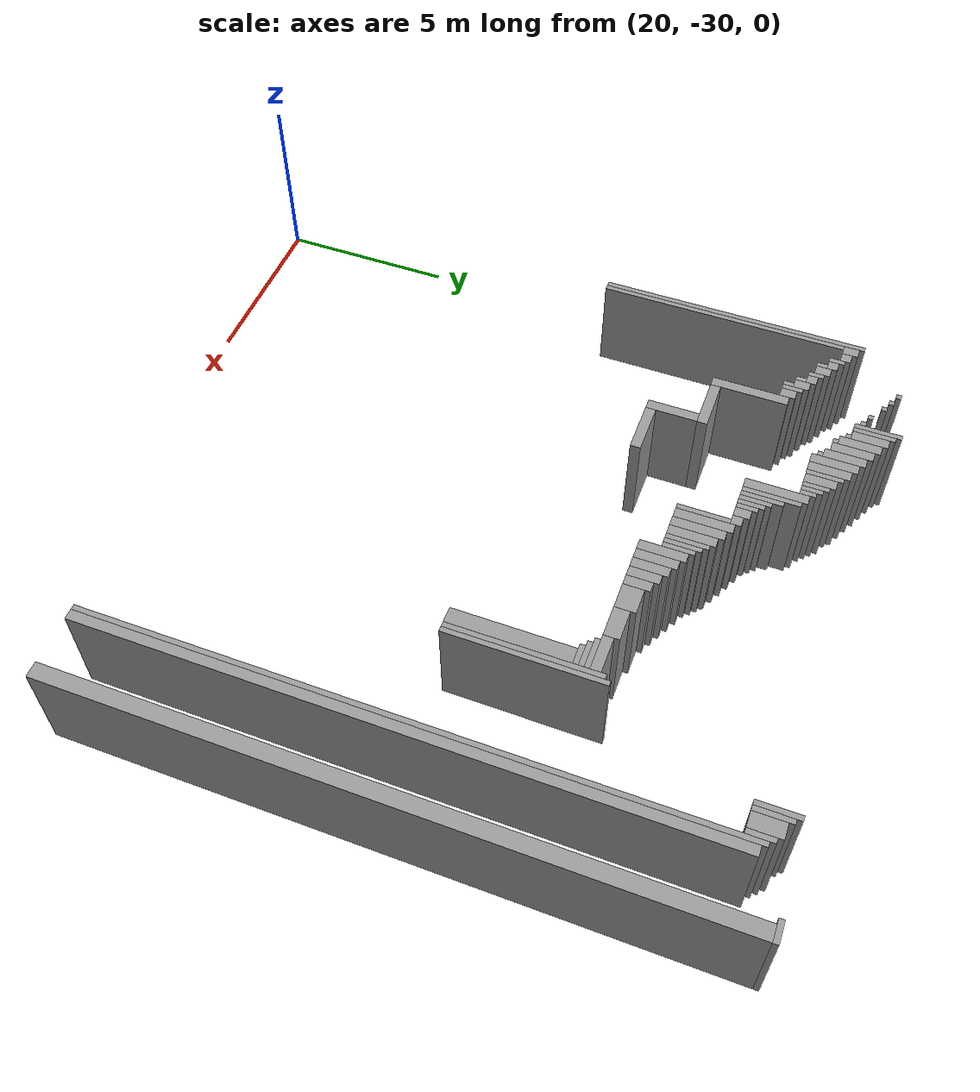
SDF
<sdf version="1.4">
 <model name="FunWorld1">
  <static>1</static>
  <link name="Wall_156">
   <collision name="Wall_156_Collision">
    <geometry><box><size>0.60000 0.15000 3.00000</size></box></geometry>
    <pose>37.80000 -9.67500 0 0 0 0.00000</pose>
   </collision>
   <visual name="Wall_156_Visual">
    <geometry><box><size>0.60000 0.15000 3.00000</size></box></geometry>
    <material>
     <script><uri>file://media/materials/scripts/gazebo.material</uri><name>Gazebo/Grey</name></script>
    </material>
    <pose>37.80000 -9.67500 0 0 0 0.00000</pose>
   </visual>
  </link>
  <link name="Wall_157">
   <collision name="Wall_157_Collision">
    <geometry><box><size>0.15000 1.35000 3.00000</size></box></geometry>
    <pose>22.87500 -10.42500 0 0 0 0.00000</pose>
   </collision>
   <visual name="Wall_157_Visual">
    <geometry><box><size>0.15000 1.35000 3.00000</size></box></geometry>
    <material>
     <script><uri>file://media/materials/scripts/gazebo.material</uri><name>Gazebo/Grey</name></script>
    </material>
    <pose>22.87500 -10.42500 0 0 0 0.00000</pose>
   </visual>
  </link>
  <link name="Wall_158">
   <collision name="Wall_158_Collision">
    <geometry><box><size>0.15000 1.20000 3.00000</size></box></geometry>
    <pose>35.02500 -10.35000 0 0 0 0.00000</pose>
   </collision>
   <visual name="Wall_158_Visual">
    <geometry><box><size>0.15000 1.20000 3.00000</size></box></geometry>
    <material>
     <script><uri>file://media/materials/scripts/gazebo.material</uri><name>Gazebo/Grey</name></script>
    </material>
    <pose>35.02500 -10.35000 0 0 0 0.00000</pose>
   </visual>
  </link>
  <link name="Wall_159">
   <collision name="Wall_159_Collision">
    <geometry><box><size>0.45000 18.75000 3.00000</size></box></geometry>
    <pose>37.87500 -19.12500 0 0 0 0.00000</pose>
   </collision>
   <visual name="Wall_159_Visual">
    <geometry><box><size>0.45000 18.75000 3.00000</size></box></geometry>
    <material>
     <script><uri>file://media/materials/scripts/gazebo.material</uri><name>Gazebo/Grey</name></script>
    </material>
    <pose>37.87500 -19.12500 0 0 0 0.00000</pose>
   </visual>
  </link>
  <link name="Wall_160">
   <collision name="Wall_160_Collision">
    <geometry><box><size>0.15000 1.20000 3.00000</size></box></geometry>
    <pose>23.02500 -10.50000 0 0 0 0.00000</pose>
   </collision>
   <visual name="Wall_160_Visual">
    <geometry><box><size>0.15000 1.20000 3.00000</size></box></geometry>
    <material>
     <script><uri>file://media/materials/scripts/gazebo.material</uri><name>Gazebo/Grey</name></script>
    </material>
    <pose>23.02500 -10.50000 0 0 0 0.00000</pose>
   </visual>
  </link>
  <link name="Wall_161">
   <collision name="Wall_161_Collision">
    <geometry><box><size>0.15000 1.05000 3.00000</size></box></geometry>
    <pose>35.17500 -10.42500 0 0 0 0.00000</pose>
   </collision>
   <visual name="Wall_161_Visual">
    <geometry><box><size>0.15000 1.05000 3.00000</size></box></geometry>
    <material>
     <script><uri>file://media/materials/scripts/gazebo.material</uri><name>Gazebo/Grey</name></script>
    </material>
    <pose>35.17500 -10.42500 0 0 0 0.00000</pose>
   </visual>
  </link>
  <link name="Wall_162">
   <collision name="Wall_162_Collision">
    <geometry><box><size>0.15000 0.15000 3.00000</size></box></geometry>
    <pose>21.37500 -10.12500 0 0 0 0.00000</pose>
   </collision>
   <visual name="Wall_162_Visual">
    <geometry><box><size>0.15000 0.15000 3.00000</size></box></geometry>
    <material>
     <script><uri>file://media/materials/scripts/gazebo.material</uri><name>Gazebo/Grey</name></script>
    </material>
    <pose>21.37500 -10.12500 0 0 0 0.00000</pose>
   </visual>
  </link>
  <link name="Wall_163">
   <collision name="Wall_163_Collision">
    <geometry><box><size>0.30000 1.05000 3.00000</size></box></geometry>
    <pose>23.25000 -10.57500 0 0 0 0.00000</pose>
   </collision>
   <visual name="Wall_163_Visual">
    <geometry><box><size>0.30000 1.05000 3.00000</size></box></geometry>
    <material>
     <script><uri>file://media/materials/scripts/gazebo.material</uri><name>Gazebo/Grey</name></script>
    </material>
    <pose>23.25000 -10.57500 0 0 0 0.00000</pose>
   </visual>
  </link>
  <link name="Wall_164">
   <collision name="Wall_164_Collision">
    <geometry><box><size>0.45000 0.90000 3.00000</size></box></geometry>
    <pose>35.47500 -10.50000 0 0 0 0.00000</pose>
   </collision>
   <visual name="Wall_164_Visual">
    <geometry><box><size>0.45000 0.90000 3.00000</size></box></geometry>
    <material>
     <script><uri>file://media/materials/scripts/gazebo.material</uri><name>Gazebo/Grey</name></script>
    </material>
    <pose>35.47500 -10.50000 0 0 0 0.00000</pose>
   </visual>
  </link>
  <link name="Wall_165">
   <collision name="Wall_165_Collision">
    <geometry><box><size>0.15000 0.15000 3.00000</size></box></geometry>
    <pose>21.67500 -10.27500 0 0 0 0.00000</pose>
   </collision>
   <visual name="Wall_165_Visual">
    <geometry><box><size>0.15000 0.15000 3.00000</size></box></geometry>
    <material>
     <script><uri>file://media/materials/scripts/gazebo.material</uri><name>Gazebo/Grey</name></script>
    </material>
    <pose>21.67500 -10.27500 0 0 0 0.00000</pose>
   </visual>
  </link>
  <link name="Wall_166">
   <collision name="Wall_166_Collision">
    <geometry><box><size>0.30000 1.20000 3.00000</size></box></geometry>
    <pose>23.55000 -10.80000 0 0 0 0.00000</pose>
   </collision>
   <visual name="Wall_166_Visual">
    <geometry><box><size>0.30000 1.20000 3.00000</size></box></geometry>
    <material>
     <script><uri>file://media/materials/scripts/gazebo.material</uri><name>Gazebo/Grey</name></script>
    </material>
    <pose>23.55000 -10.80000 0 0 0 0.00000</pose>
   </visual>
  </link>
  <link name="Wall_167">
   <collision name="Wall_167_Collision">
    <geometry><box><size>0.15000 0.75000 3.00000</size></box></geometry>
    <pose>35.77500 -10.57500 0 0 0 0.00000</pose>
   </collision>
   <visual name="Wall_167_Visual">
    <geometry><box><size>0.15000 0.75000 3.00000</size></box></geometry>
    <material>
     <script><uri>file://media/materials/scripts/gazebo.material</uri><name>Gazebo/Grey</name></script>
    </material>
    <pose>35.77500 -10.57500 0 0 0 0.00000</pose>
   </visual>
  </link>
  <link name="Wall_168">
   <collision name="Wall_168_Collision">
    <geometry><box><size>0.15000 0.15000 3.00000</size></box></geometry>
    <pose>21.97500 -10.42500 0 0 0 0.00000</pose>
   </collision>
   <visual name="Wall_168_Visual">
    <geometry><box><size>0.15000 0.15000 3.00000</size></box></geometry>
    <material>
     <script><uri>file://media/materials/scripts/gazebo.material</uri><name>Gazebo/Grey</name></script>
    </material>
    <pose>21.97500 -10.42500 0 0 0 0.00000</pose>
   </visual>
  </link>
  <link name="Wall_169">
   <collision name="Wall_169_Collision">
    <geometry><box><size>0.30000 1.20000 3.00000</size></box></geometry>
    <pose>23.85000 -10.95000 0 0 0 0.00000</pose>
   </collision>
   <visual name="Wall_169_Visual">
    <geometry><box><size>0.30000 1.20000 3.00000</size></box></geometry>
    <material>
     <script><uri>file://media/materials/scripts/gazebo.material</uri><name>Gazebo/Grey</name></script>
    </material>
    <pose>23.85000 -10.95000 0 0 0 0.00000</pose>
   </visual>
  </link>
  <link name="Wall_170">
   <collision name="Wall_170_Collision">
    <geometry><box><size>0.15000 18.15000 3.00000</size></box></geometry>
    <pose>35.92500 -19.42500 0 0 0 0.00000</pose>
   </collision>
   <visual name="Wall_170_Visual">
    <geometry><box><size>0.15000 18.15000 3.00000</size></box></geometry>
    <material>
     <script><uri>file://media/materials/scripts/gazebo.material</uri><name>Gazebo/Grey</name></script>
    </material>
    <pose>35.92500 -19.42500 0 0 0 0.00000</pose>
   </visual>
  </link>
  <link name="Wall_171">
   <collision name="Wall_171_Collision">
    <geometry><box><size>0.30000 1.20000 3.00000</size></box></geometry>
    <pose>24.15000 -11.10000 0 0 0 0.00000</pose>
   </collision>
   <visual name="Wall_171_Visual">
    <geometry><box><size>0.30000 1.20000 3.00000</size></box></geometry>
    <material>
     <script><uri>file://media/materials/scripts/gazebo.material</uri><name>Gazebo/Grey</name></script>
    </material>
    <pose>24.15000 -11.10000 0 0 0 0.00000</pose>
   </visual>
  </link>
  <link name="Wall_172">
   <collision name="Wall_172_Collision">
    <geometry><box><size>0.30000 18.00000 3.00000</size></box></geometry>
    <pose>36.15000 -19.50000 0 0 0 0.00000</pose>
   </collision>
   <visual name="Wall_172_Visual">
    <geometry><box><size>0.30000 18.00000 3.00000</size></box></geometry>
    <material>
     <script><uri>file://media/materials/scripts/gazebo.material</uri><name>Gazebo/Grey</name></script>
    </material>
    <pose>36.15000 -19.50000 0 0 0 0.00000</pose>
   </visual>
  </link>
  <link name="Wall_173">
   <collision name="Wall_173_Collision">
    <geometry><box><size>0.15000 0.15000 3.00000</size></box></geometry>
    <pose>22.42500 -10.72500 0 0 0 0.00000</pose>
   </collision>
   <visual name="Wall_173_Visual">
    <geometry><box><size>0.15000 0.15000 3.00000</size></box></geometry>
    <material>
     <script><uri>file://media/materials/scripts/gazebo.material</uri><name>Gazebo/Grey</name></script>
    </material>
    <pose>22.42500 -10.72500 0 0 0 0.00000</pose>
   </visual>
  </link>
  <link name="Wall_174">
   <collision name="Wall_174_Collision">
    <geometry><box><size>0.30000 1.35000 3.00000</size></box></geometry>
    <pose>24.45000 -11.32500 0 0 0 0.00000</pose>
   </collision>
   <visual name="Wall_174_Visual">
    <geometry><box><size>0.30000 1.35000 3.00000</size></box></geometry>
    <material>
     <script><uri>file://media/materials/scripts/gazebo.material</uri><name>Gazebo/Grey</name></script>
    </material>
    <pose>24.45000 -11.32500 0 0 0 0.00000</pose>
   </visual>
  </link>
  <link name="Wall_175">
   <collision name="Wall_175_Collision">
    <geometry><box><size>0.15000 0.15000 3.00000</size></box></geometry>
    <pose>22.72500 -10.87500 0 0 0 0.00000</pose>
   </collision>
   <visual name="Wall_175_Visual">
    <geometry><box><size>0.15000 0.15000 3.00000</size></box></geometry>
    <material>
     <script><uri>file://media/materials/scripts/gazebo.material</uri><name>Gazebo/Grey</name></script>
    </material>
    <pose>22.72500 -10.87500 0 0 0 0.00000</pose>
   </visual>
  </link>
  <link name="Wall_176">
   <collision name="Wall_176_Collision">
    <geometry><box><size>0.30000 1.20000 3.00000</size></box></geometry>
    <pose>24.75000 -11.40000 0 0 0 0.00000</pose>
   </collision>
   <visual name="Wall_176_Visual">
    <geometry><box><size>0.30000 1.20000 3.00000</size></box></geometry>
    <material>
     <script><uri>file://media/materials/scripts/gazebo.material</uri><name>Gazebo/Grey</name></script>
    </material>
    <pose>24.75000 -11.40000 0 0 0 0.00000</pose>
   </visual>
  </link>
  <link name="Wall_177">
   <collision name="Wall_177_Collision">
    <geometry><box><size>0.15000 1.05000 3.00000</size></box></geometry>
    <pose>24.97500 -11.47500 0 0 0 0.00000</pose>
   </collision>
   <visual name="Wall_177_Visual">
    <geometry><box><size>0.15000 1.05000 3.00000</size></box></geometry>
    <material>
     <script><uri>file://media/materials/scripts/gazebo.material</uri><name>Gazebo/Grey</name></script>
    </material>
    <pose>24.97500 -11.47500 0 0 0 0.00000</pose>
   </visual>
  </link>
  <link name="Wall_178">
   <collision name="Wall_178_Collision">
    <geometry><box><size>0.15000 0.15000 3.00000</size></box></geometry>
    <pose>23.32500 -11.17500 0 0 0 0.00000</pose>
   </collision>
   <visual name="Wall_178_Visual">
    <geometry><box><size>0.15000 0.15000 3.00000</size></box></geometry>
    <material>
     <script><uri>file://media/materials/scripts/gazebo.material</uri><name>Gazebo/Grey</name></script>
    </material>
    <pose>23.32500 -11.17500 0 0 0 0.00000</pose>
   </visual>
  </link>
  <link name="Wall_179">
   <collision name="Wall_179_Collision">
    <geometry><box><size>0.30000 0.90000 3.00000</size></box></geometry>
    <pose>25.20000 -11.55000 0 0 0 0.00000</pose>
   </collision>
   <visual name="Wall_179_Visual">
    <geometry><box><size>0.30000 0.90000 3.00000</size></box></geometry>
    <material>
     <script><uri>file://media/materials/scripts/gazebo.material</uri><name>Gazebo/Grey</name></script>
    </material>
    <pose>25.20000 -11.55000 0 0 0 0.00000</pose>
   </visual>
  </link>
  <link name="Wall_180">
   <collision name="Wall_180_Collision">
    <geometry><box><size>0.15000 0.75000 3.00000</size></box></geometry>
    <pose>25.42500 -11.62500 0 0 0 0.00000</pose>
   </collision>
   <visual name="Wall_180_Visual">
    <geometry><box><size>0.15000 0.75000 3.00000</size></box></geometry>
    <material>
     <script><uri>file://media/materials/scripts/gazebo.material</uri><name>Gazebo/Grey</name></script>
    </material>
    <pose>25.42500 -11.62500 0 0 0 0.00000</pose>
   </visual>
  </link>
  <link name="Wall_181">
   <collision name="Wall_181_Collision">
    <geometry><box><size>0.15000 7.95000 3.00000</size></box></geometry>
    <pose>19.87500 -15.37500 0 0 0 0.00000</pose>
   </collision>
   <visual name="Wall_181_Visual">
    <geometry><box><size>0.15000 7.95000 3.00000</size></box></geometry>
    <material>
     <script><uri>file://media/materials/scripts/gazebo.material</uri><name>Gazebo/Grey</name></script>
    </material>
    <pose>19.87500 -15.37500 0 0 0 0.00000</pose>
   </visual>
  </link>
  <link name="Wall_182">
   <collision name="Wall_182_Collision">
    <geometry><box><size>0.15000 0.15000 3.00000</size></box></geometry>
    <pose>23.62500 -11.47500 0 0 0 0.00000</pose>
   </collision>
   <visual name="Wall_182_Visual">
    <geometry><box><size>0.15000 0.15000 3.00000</size></box></geometry>
    <material>
     <script><uri>file://media/materials/scripts/gazebo.material</uri><name>Gazebo/Grey</name></script>
    </material>
    <pose>23.62500 -11.47500 0 0 0 0.00000</pose>
   </visual>
  </link>
  <link name="Wall_183">
   <collision name="Wall_183_Collision">
    <geometry><box><size>0.15000 0.60000 3.00000</size></box></geometry>
    <pose>25.57500 -11.70000 0 0 0 0.00000</pose>
   </collision>
   <visual name="Wall_183_Visual">
    <geometry><box><size>0.15000 0.60000 3.00000</size></box></geometry>
    <material>
     <script><uri>file://media/materials/scripts/gazebo.material</uri><name>Gazebo/Grey</name></script>
    </material>
    <pose>25.57500 -11.70000 0 0 0 0.00000</pose>
   </visual>
  </link>
  <link name="Wall_184">
   <collision name="Wall_184_Collision">
    <geometry><box><size>0.30000 0.45000 3.00000</size></box></geometry>
    <pose>20.10000 -11.77500 0 0 0 0.00000</pose>
   </collision>
   <visual name="Wall_184_Visual">
    <geometry><box><size>0.30000 0.45000 3.00000</size></box></geometry>
    <material>
     <script><uri>file://media/materials/scripts/gazebo.material</uri><name>Gazebo/Grey</name></script>
    </material>
    <pose>20.10000 -11.77500 0 0 0 0.00000</pose>
   </visual>
  </link>
  <link name="Wall_185">
   <collision name="Wall_185_Collision">
    <geometry><box><size>0.15000 0.45000 3.00000</size></box></geometry>
    <pose>25.72500 -11.77500 0 0 0 0.00000</pose>
   </collision>
   <visual name="Wall_185_Visual">
    <geometry><box><size>0.15000 0.45000 3.00000</size></box></geometry>
    <material>
     <script><uri>file://media/materials/scripts/gazebo.material</uri><name>Gazebo/Grey</name></script>
    </material>
    <pose>25.72500 -11.77500 0 0 0 0.00000</pose>
   </visual>
  </link>
  <link name="Wall_186">
   <collision name="Wall_186_Collision">
    <geometry><box><size>0.30000 0.30000 3.00000</size></box></geometry>
    <pose>20.40000 -11.85000 0 0 0 0.00000</pose>
   </collision>
   <visual name="Wall_186_Visual">
    <geometry><box><size>0.30000 0.30000 3.00000</size></box></geometry>
    <material>
     <script><uri>file://media/materials/scripts/gazebo.material</uri><name>Gazebo/Grey</name></script>
    </material>
    <pose>20.40000 -11.85000 0 0 0 0.00000</pose>
   </visual>
  </link>
  <link name="Wall_187">
   <collision name="Wall_187_Collision">
    <geometry><box><size>0.15000 0.15000 3.00000</size></box></geometry>
    <pose>24.22500 -11.77500 0 0 0 0.00000</pose>
   </collision>
   <visual name="Wall_187_Visual">
    <geometry><box><size>0.15000 0.15000 3.00000</size></box></geometry>
    <material>
     <script><uri>file://media/materials/scripts/gazebo.material</uri><name>Gazebo/Grey</name></script>
    </material>
    <pose>24.22500 -11.77500 0 0 0 0.00000</pose>
   </visual>
  </link>
  <link name="Wall_188">
   <collision name="Wall_188_Collision">
    <geometry><box><size>0.30000 1.80000 3.00000</size></box></geometry>
    <pose>25.95000 -12.60000 0 0 0 0.00000</pose>
   </collision>
   <visual name="Wall_188_Visual">
    <geometry><box><size>0.30000 1.80000 3.00000</size></box></geometry>
    <material>
     <script><uri>file://media/materials/scripts/gazebo.material</uri><name>Gazebo/Grey</name></script>
    </material>
    <pose>25.95000 -12.60000 0 0 0 0.00000</pose>
   </visual>
  </link>
  <link name="Wall_189">
   <collision name="Wall_189_Collision">
    <geometry><box><size>0.15000 0.45000 3.00000</size></box></geometry>
    <pose>20.62500 -12.07500 0 0 0 0.00000</pose>
   </collision>
   <visual name="Wall_189_Visual">
    <geometry><box><size>0.15000 0.45000 3.00000</size></box></geometry>
    <material>
     <script><uri>file://media/materials/scripts/gazebo.material</uri><name>Gazebo/Grey</name></script>
    </material>
    <pose>20.62500 -12.07500 0 0 0 0.00000</pose>
   </visual>
  </link>
  <link name="Wall_190">
   <collision name="Wall_190_Collision">
    <geometry><box><size>0.15000 1.65000 3.00000</size></box></geometry>
    <pose>26.17500 -12.67500 0 0 0 0.00000</pose>
   </collision>
   <visual name="Wall_190_Visual">
    <geometry><box><size>0.15000 1.65000 3.00000</size></box></geometry>
    <material>
     <script><uri>file://media/materials/scripts/gazebo.material</uri><name>Gazebo/Grey</name></script>
    </material>
    <pose>26.17500 -12.67500 0 0 0 0.00000</pose>
   </visual>
  </link>
  <link name="Wall_191">
   <collision name="Wall_191_Collision">
    <geometry><box><size>0.15000 7.35000 3.00000</size></box></geometry>
    <pose>20.02500 -15.67500 0 0 0 0.00000</pose>
   </collision>
   <visual name="Wall_191_Visual">
    <geometry><box><size>0.15000 7.35000 3.00000</size></box></geometry>
    <material>
     <script><uri>file://media/materials/scripts/gazebo.material</uri><name>Gazebo/Grey</name></script>
    </material>
    <pose>20.02500 -15.67500 0 0 0 0.00000</pose>
   </visual>
  </link>
  <link name="Wall_192">
   <collision name="Wall_192_Collision">
    <geometry><box><size>0.30000 0.30000 3.00000</size></box></geometry>
    <pose>20.85000 -12.15000 0 0 0 0.00000</pose>
   </collision>
   <visual name="Wall_192_Visual">
    <geometry><box><size>0.30000 0.30000 3.00000</size></box></geometry>
    <material>
     <script><uri>file://media/materials/scripts/gazebo.material</uri><name>Gazebo/Grey</name></script>
    </material>
    <pose>20.85000 -12.15000 0 0 0 0.00000</pose>
   </visual>
  </link>
  <link name="Wall_193">
   <collision name="Wall_193_Collision">
    <geometry><box><size>0.30000 0.45000 3.00000</size></box></geometry>
    <pose>21.15000 -12.37500 0 0 0 0.00000</pose>
   </collision>
   <visual name="Wall_193_Visual">
    <geometry><box><size>0.30000 0.45000 3.00000</size></box></geometry>
    <material>
     <script><uri>file://media/materials/scripts/gazebo.material</uri><name>Gazebo/Grey</name></script>
    </material>
    <pose>21.15000 -12.37500 0 0 0 0.00000</pose>
   </visual>
  </link>
  <link name="Wall_194">
   <collision name="Wall_194_Collision">
    <geometry><box><size>0.15000 0.30000 3.00000</size></box></geometry>
    <pose>20.92500 -12.45000 0 0 0 0.00000</pose>
   </collision>
   <visual name="Wall_194_Visual">
    <geometry><box><size>0.15000 0.30000 3.00000</size></box></geometry>
    <material>
     <script><uri>file://media/materials/scripts/gazebo.material</uri><name>Gazebo/Grey</name></script>
    </material>
    <pose>20.92500 -12.45000 0 0 0 0.00000</pose>
   </visual>
  </link>
  <link name="Wall_195">
   <collision name="Wall_195_Collision">
    <geometry><box><size>0.15000 0.45000 3.00000</size></box></geometry>
    <pose>21.37500 -12.52500 0 0 0 0.00000</pose>
   </collision>
   <visual name="Wall_195_Visual">
    <geometry><box><size>0.15000 0.45000 3.00000</size></box></geometry>
    <material>
     <script><uri>file://media/materials/scripts/gazebo.material</uri><name>Gazebo/Grey</name></script>
    </material>
    <pose>21.37500 -12.52500 0 0 0 0.00000</pose>
   </visual>
  </link>
  <link name="Wall_196">
   <collision name="Wall_196_Collision">
    <geometry><box><size>0.15000 1.20000 3.00000</size></box></geometry>
    <pose>26.32500 -12.90000 0 0 0 0.00000</pose>
   </collision>
   <visual name="Wall_196_Visual">
    <geometry><box><size>0.15000 1.20000 3.00000</size></box></geometry>
    <material>
     <script><uri>file://media/materials/scripts/gazebo.material</uri><name>Gazebo/Grey</name></script>
    </material>
    <pose>26.32500 -12.90000 0 0 0 0.00000</pose>
   </visual>
  </link>
  <link name="Wall_197">
   <collision name="Wall_197_Collision">
    <geometry><box><size>0.30000 0.30000 3.00000</size></box></geometry>
    <pose>21.60000 -12.60000 0 0 0 0.00000</pose>
   </collision>
   <visual name="Wall_197_Visual">
    <geometry><box><size>0.30000 0.30000 3.00000</size></box></geometry>
    <material>
     <script><uri>file://media/materials/scripts/gazebo.material</uri><name>Gazebo/Grey</name></script>
    </material>
    <pose>21.60000 -12.60000 0 0 0 0.00000</pose>
   </visual>
  </link>
  <link name="Wall_198">
   <collision name="Wall_198_Collision">
    <geometry><box><size>0.30000 0.45000 3.00000</size></box></geometry>
    <pose>21.90000 -12.82500 0 0 0 0.00000</pose>
   </collision>
   <visual name="Wall_198_Visual">
    <geometry><box><size>0.30000 0.45000 3.00000</size></box></geometry>
    <material>
     <script><uri>file://media/materials/scripts/gazebo.material</uri><name>Gazebo/Grey</name></script>
    </material>
    <pose>21.90000 -12.82500 0 0 0 0.00000</pose>
   </visual>
  </link>
  <link name="Wall_199">
   <collision name="Wall_199_Collision">
    <geometry><box><size>0.15000 0.90000 3.00000</size></box></geometry>
    <pose>26.47500 -13.05000 0 0 0 0.00000</pose>
   </collision>
   <visual name="Wall_199_Visual">
    <geometry><box><size>0.15000 0.90000 3.00000</size></box></geometry>
    <material>
     <script><uri>file://media/materials/scripts/gazebo.material</uri><name>Gazebo/Grey</name></script>
    </material>
    <pose>26.47500 -13.05000 0 0 0 0.00000</pose>
   </visual>
  </link>
  <link name="Wall_200">
   <collision name="Wall_200_Collision">
    <geometry><box><size>0.15000 0.30000 3.00000</size></box></geometry>
    <pose>21.67500 -12.90000 0 0 0 0.00000</pose>
   </collision>
   <visual name="Wall_200_Visual">
    <geometry><box><size>0.15000 0.30000 3.00000</size></box></geometry>
    <material>
     <script><uri>file://media/materials/scripts/gazebo.material</uri><name>Gazebo/Grey</name></script>
    </material>
    <pose>21.67500 -12.90000 0 0 0 0.00000</pose>
   </visual>
  </link>
  <link name="Wall_201">
   <collision name="Wall_201_Collision">
    <geometry><box><size>0.15000 0.60000 3.00000</size></box></geometry>
    <pose>22.12500 -13.05000 0 0 0 0.00000</pose>
   </collision>
   <visual name="Wall_201_Visual">
    <geometry><box><size>0.15000 0.60000 3.00000</size></box></geometry>
    <material>
     <script><uri>file://media/materials/scripts/gazebo.material</uri><name>Gazebo/Grey</name></script>
    </material>
    <pose>22.12500 -13.05000 0 0 0 0.00000</pose>
   </visual>
  </link>
  <link name="Wall_202">
   <collision name="Wall_202_Collision">
    <geometry><box><size>0.15000 0.75000 3.00000</size></box></geometry>
    <pose>26.62500 -13.12500 0 0 0 0.00000</pose>
   </collision>
   <visual name="Wall_202_Visual">
    <geometry><box><size>0.15000 0.75000 3.00000</size></box></geometry>
    <material>
     <script><uri>file://media/materials/scripts/gazebo.material</uri><name>Gazebo/Grey</name></script>
    </material>
    <pose>26.62500 -13.12500 0 0 0 0.00000</pose>
   </visual>
  </link>
  <link name="Wall_203">
   <collision name="Wall_203_Collision">
    <geometry><box><size>0.30000 0.45000 3.00000</size></box></geometry>
    <pose>22.35000 -13.12500 0 0 0 0.00000</pose>
   </collision>
   <visual name="Wall_203_Visual">
    <geometry><box><size>0.30000 0.45000 3.00000</size></box></geometry>
    <material>
     <script><uri>file://media/materials/scripts/gazebo.material</uri><name>Gazebo/Grey</name></script>
    </material>
    <pose>22.35000 -13.12500 0 0 0 0.00000</pose>
   </visual>
  </link>
  <link name="Wall_204">
   <collision name="Wall_204_Collision">
    <geometry><box><size>0.15000 0.60000 3.00000</size></box></geometry>
    <pose>26.77500 -13.20000 0 0 0 0.00000</pose>
   </collision>
   <visual name="Wall_204_Visual">
    <geometry><box><size>0.15000 0.60000 3.00000</size></box></geometry>
    <material>
     <script><uri>file://media/materials/scripts/gazebo.material</uri><name>Gazebo/Grey</name></script>
    </material>
    <pose>26.77500 -13.20000 0 0 0 0.00000</pose>
   </visual>
  </link>
  <link name="Wall_205">
   <collision name="Wall_205_Collision">
    <geometry><box><size>0.15000 0.30000 3.00000</size></box></geometry>
    <pose>21.97500 -13.20000 0 0 0 0.00000</pose>
   </collision>
   <visual name="Wall_205_Visual">
    <geometry><box><size>0.15000 0.30000 3.00000</size></box></geometry>
    <material>
     <script><uri>file://media/materials/scripts/gazebo.material</uri><name>Gazebo/Grey</name></script>
    </material>
    <pose>21.97500 -13.20000 0 0 0 0.00000</pose>
   </visual>
  </link>
  <link name="Wall_206">
   <collision name="Wall_206_Collision">
    <geometry><box><size>0.30000 2.25000 3.00000</size></box></geometry>
    <pose>22.65000 -14.17500 0 0 0 0.00000</pose>
   </collision>
   <visual name="Wall_206_Visual">
    <geometry><box><size>0.30000 2.25000 3.00000</size></box></geometry>
    <material>
     <script><uri>file://media/materials/scripts/gazebo.material</uri><name>Gazebo/Grey</name></script>
    </material>
    <pose>22.65000 -14.17500 0 0 0 0.00000</pose>
   </visual>
  </link>
  <link name="Wall_207">
   <collision name="Wall_207_Collision">
    <geometry><box><size>0.30000 0.45000 3.00000</size></box></geometry>
    <pose>27.00000 -13.27500 0 0 0 0.00000</pose>
   </collision>
   <visual name="Wall_207_Visual">
    <geometry><box><size>0.30000 0.45000 3.00000</size></box></geometry>
    <material>
     <script><uri>file://media/materials/scripts/gazebo.material</uri><name>Gazebo/Grey</name></script>
    </material>
    <pose>27.00000 -13.27500 0 0 0 0.00000</pose>
   </visual>
  </link>
  <link name="Wall_208">
   <collision name="Wall_208_Collision">
    <geometry><box><size>0.30000 0.30000 3.00000</size></box></geometry>
    <pose>27.30000 -13.35000 0 0 0 0.00000</pose>
   </collision>
   <visual name="Wall_208_Visual">
    <geometry><box><size>0.30000 0.30000 3.00000</size></box></geometry>
    <material>
     <script><uri>file://media/materials/scripts/gazebo.material</uri><name>Gazebo/Grey</name></script>
    </material>
    <pose>27.30000 -13.35000 0 0 0 0.00000</pose>
   </visual>
  </link>
  <link name="Wall_209">
   <collision name="Wall_209_Collision">
    <geometry><box><size>0.30000 1.65000 3.00000</size></box></geometry>
    <pose>27.60000 -14.17500 0 0 0 0.00000</pose>
   </collision>
   <visual name="Wall_209_Visual">
    <geometry><box><size>0.30000 1.65000 3.00000</size></box></geometry>
    <material>
     <script><uri>file://media/materials/scripts/gazebo.material</uri><name>Gazebo/Grey</name></script>
    </material>
    <pose>27.60000 -14.17500 0 0 0 0.00000</pose>
   </visual>
  </link>
  <link name="Wall_210">
   <collision name="Wall_210_Collision">
    <geometry><box><size>0.15000 1.50000 3.00000</size></box></geometry>
    <pose>27.37500 -14.25000 0 0 0 0.00000</pose>
   </collision>
   <visual name="Wall_210_Visual">
    <geometry><box><size>0.15000 1.50000 3.00000</size></box></geometry>
    <material>
     <script><uri>file://media/materials/scripts/gazebo.material</uri><name>Gazebo/Grey</name></script>
    </material>
    <pose>27.37500 -14.25000 0 0 0 0.00000</pose>
   </visual>
  </link>
  <link name="Wall_211">
   <collision name="Wall_211_Collision">
    <geometry><box><size>0.30000 1.50000 3.00000</size></box></geometry>
    <pose>27.90000 -14.25000 0 0 0 0.00000</pose>
   </collision>
   <visual name="Wall_211_Visual">
    <geometry><box><size>0.30000 1.50000 3.00000</size></box></geometry>
    <material>
     <script><uri>file://media/materials/scripts/gazebo.material</uri><name>Gazebo/Grey</name></script>
    </material>
    <pose>27.90000 -14.25000 0 0 0 0.00000</pose>
   </visual>
  </link>
  <link name="Wall_212">
   <collision name="Wall_212_Collision">
    <geometry><box><size>0.30000 1.35000 3.00000</size></box></geometry>
    <pose>28.20000 -14.32500 0 0 0 0.00000</pose>
   </collision>
   <visual name="Wall_212_Visual">
    <geometry><box><size>0.30000 1.35000 3.00000</size></box></geometry>
    <material>
     <script><uri>file://media/materials/scripts/gazebo.material</uri><name>Gazebo/Grey</name></script>
    </material>
    <pose>28.20000 -14.32500 0 0 0 0.00000</pose>
   </visual>
  </link>
  <link name="Wall_213">
   <collision name="Wall_213_Collision">
    <geometry><box><size>0.15000 1.20000 3.00000</size></box></geometry>
    <pose>28.42500 -14.40000 0 0 0 0.00000</pose>
   </collision>
   <visual name="Wall_213_Visual">
    <geometry><box><size>0.15000 1.20000 3.00000</size></box></geometry>
    <material>
     <script><uri>file://media/materials/scripts/gazebo.material</uri><name>Gazebo/Grey</name></script>
    </material>
    <pose>28.42500 -14.40000 0 0 0 0.00000</pose>
   </visual>
  </link>
  <link name="Wall_214">
   <collision name="Wall_214_Collision">
    <geometry><box><size>0.15000 1.05000 3.00000</size></box></geometry>
    <pose>28.57500 -14.47500 0 0 0 0.00000</pose>
   </collision>
   <visual name="Wall_214_Visual">
    <geometry><box><size>0.15000 1.05000 3.00000</size></box></geometry>
    <material>
     <script><uri>file://media/materials/scripts/gazebo.material</uri><name>Gazebo/Grey</name></script>
    </material>
    <pose>28.57500 -14.47500 0 0 0 0.00000</pose>
   </visual>
  </link>
  <link name="Wall_215">
   <collision name="Wall_215_Collision">
    <geometry><box><size>0.15000 0.90000 3.00000</size></box></geometry>
    <pose>28.72500 -14.55000 0 0 0 0.00000</pose>
   </collision>
   <visual name="Wall_215_Visual">
    <geometry><box><size>0.15000 0.90000 3.00000</size></box></geometry>
    <material>
     <script><uri>file://media/materials/scripts/gazebo.material</uri><name>Gazebo/Grey</name></script>
    </material>
    <pose>28.72500 -14.55000 0 0 0 0.00000</pose>
   </visual>
  </link>
  <link name="Wall_216">
   <collision name="Wall_216_Collision">
    <geometry><box><size>0.30000 1.35000 3.00000</size></box></geometry>
    <pose>28.95000 -14.92500 0 0 0 0.00000</pose>
   </collision>
   <visual name="Wall_216_Visual">
    <geometry><box><size>0.30000 1.35000 3.00000</size></box></geometry>
    <material>
     <script><uri>file://media/materials/scripts/gazebo.material</uri><name>Gazebo/Grey</name></script>
    </material>
    <pose>28.95000 -14.92500 0 0 0 0.00000</pose>
   </visual>
  </link>
  <link name="Wall_217">
   <collision name="Wall_217_Collision">
    <geometry><box><size>0.30000 1.20000 3.00000</size></box></geometry>
    <pose>29.25000 -15.00000 0 0 0 0.00000</pose>
   </collision>
   <visual name="Wall_217_Visual">
    <geometry><box><size>0.30000 1.20000 3.00000</size></box></geometry>
    <material>
     <script><uri>file://media/materials/scripts/gazebo.material</uri><name>Gazebo/Grey</name></script>
    </material>
    <pose>29.25000 -15.00000 0 0 0 0.00000</pose>
   </visual>
  </link>
  <link name="Wall_218">
   <collision name="Wall_218_Collision">
    <geometry><box><size>0.30000 1.05000 3.00000</size></box></geometry>
    <pose>29.55000 -15.07500 0 0 0 0.00000</pose>
   </collision>
   <visual name="Wall_218_Visual">
    <geometry><box><size>0.30000 1.05000 3.00000</size></box></geometry>
    <material>
     <script><uri>file://media/materials/scripts/gazebo.material</uri><name>Gazebo/Grey</name></script>
    </material>
    <pose>29.55000 -15.07500 0 0 0 0.00000</pose>
   </visual>
  </link>
  <link name="Wall_219">
   <collision name="Wall_219_Collision">
    <geometry><box><size>0.30000 0.90000 3.00000</size></box></geometry>
    <pose>29.85000 -15.15000 0 0 0 0.00000</pose>
   </collision>
   <visual name="Wall_219_Visual">
    <geometry><box><size>0.30000 0.90000 3.00000</size></box></geometry>
    <material>
     <script><uri>file://media/materials/scripts/gazebo.material</uri><name>Gazebo/Grey</name></script>
    </material>
    <pose>29.85000 -15.15000 0 0 0 0.00000</pose>
   </visual>
  </link>
  <link name="Wall_220">
   <collision name="Wall_220_Collision">
    <geometry><box><size>0.30000 0.75000 3.00000</size></box></geometry>
    <pose>30.15000 -15.22500 0 0 0 0.00000</pose>
   </collision>
   <visual name="Wall_220_Visual">
    <geometry><box><size>0.30000 0.75000 3.00000</size></box></geometry>
    <material>
     <script><uri>file://media/materials/scripts/gazebo.material</uri><name>Gazebo/Grey</name></script>
    </material>
    <pose>30.15000 -15.22500 0 0 0 0.00000</pose>
   </visual>
  </link>
  <link name="Wall_221">
   <collision name="Wall_221_Collision">
    <geometry><box><size>1.50000 0.30000 3.00000</size></box></geometry>
    <pose>23.55000 -15.15000 0 0 0 0.00000</pose>
   </collision>
   <visual name="Wall_221_Visual">
    <geometry><box><size>1.50000 0.30000 3.00000</size></box></geometry>
    <material>
     <script><uri>file://media/materials/scripts/gazebo.material</uri><name>Gazebo/Grey</name></script>
    </material>
    <pose>23.55000 -15.15000 0 0 0 0.00000</pose>
   </visual>
  </link>
  <link name="Wall_222">
   <collision name="Wall_222_Collision">
    <geometry><box><size>0.75000 0.60000 3.00000</size></box></geometry>
    <pose>30.67500 -15.30000 0 0 0 0.00000</pose>
   </collision>
   <visual name="Wall_222_Visual">
    <geometry><box><size>0.75000 0.60000 3.00000</size></box></geometry>
    <material>
     <script><uri>file://media/materials/scripts/gazebo.material</uri><name>Gazebo/Grey</name></script>
    </material>
    <pose>30.67500 -15.30000 0 0 0 0.00000</pose>
   </visual>
  </link>
  <link name="Wall_223">
   <collision name="Wall_223_Collision">
    <geometry><box><size>0.15000 4.50000 3.00000</size></box></geometry>
    <pose>33.22500 -17.25000 0 0 0 0.00000</pose>
   </collision>
   <visual name="Wall_223_Visual">
    <geometry><box><size>0.15000 4.50000 3.00000</size></box></geometry>
    <material>
     <script><uri>file://media/materials/scripts/gazebo.material</uri><name>Gazebo/Grey</name></script>
    </material>
    <pose>33.22500 -17.25000 0 0 0 0.00000</pose>
   </visual>
  </link>
  <link name="Wall_224">
   <collision name="Wall_224_Collision">
    <geometry><box><size>0.90000 0.45000 3.00000</size></box></geometry>
    <pose>31.50000 -15.37500 0 0 0 0.00000</pose>
   </collision>
   <visual name="Wall_224_Visual">
    <geometry><box><size>0.90000 0.45000 3.00000</size></box></geometry>
    <material>
     <script><uri>file://media/materials/scripts/gazebo.material</uri><name>Gazebo/Grey</name></script>
    </material>
    <pose>31.50000 -15.37500 0 0 0 0.00000</pose>
   </visual>
  </link>
  <link name="Wall_225">
   <collision name="Wall_225_Collision">
    <geometry><box><size>0.15000 4.35000 3.00000</size></box></geometry>
    <pose>33.07500 -17.32500 0 0 0 0.00000</pose>
   </collision>
   <visual name="Wall_225_Visual">
    <geometry><box><size>0.15000 4.35000 3.00000</size></box></geometry>
    <material>
     <script><uri>file://media/materials/scripts/gazebo.material</uri><name>Gazebo/Grey</name></script>
    </material>
    <pose>33.07500 -17.32500 0 0 0 0.00000</pose>
   </visual>
  </link>
  <link name="Wall_226">
   <collision name="Wall_226_Collision">
    <geometry><box><size>0.30000 1.50000 3.00000</size></box></geometry>
    <pose>24.15000 -16.05000 0 0 0 0.00000</pose>
   </collision>
   <visual name="Wall_226_Visual">
    <geometry><box><size>0.30000 1.50000 3.00000</size></box></geometry>
    <material>
     <script><uri>file://media/materials/scripts/gazebo.material</uri><name>Gazebo/Grey</name></script>
    </material>
    <pose>24.15000 -16.05000 0 0 0 0.00000</pose>
   </visual>
  </link>
  <link name="Wall_227">
   <collision name="Wall_227_Collision">
    <geometry><box><size>1.05000 0.30000 3.00000</size></box></geometry>
    <pose>32.47500 -15.45000 0 0 0 0.00000</pose>
   </collision>
   <visual name="Wall_227_Visual">
    <geometry><box><size>1.05000 0.30000 3.00000</size></box></geometry>
    <material>
     <script><uri>file://media/materials/scripts/gazebo.material</uri><name>Gazebo/Grey</name></script>
    </material>
    <pose>32.47500 -15.45000 0 0 0 0.00000</pose>
   </visual>
  </link>
  <link name="Wall_228">
   <collision name="Wall_228_Collision">
    <geometry><box><size>0.90000 0.15000 3.00000</size></box></geometry>
    <pose>32.55000 -15.67500 0 0 0 0.00000</pose>
   </collision>
   <visual name="Wall_228_Visual">
    <geometry><box><size>0.90000 0.15000 3.00000</size></box></geometry>
    <material>
     <script><uri>file://media/materials/scripts/gazebo.material</uri><name>Gazebo/Grey</name></script>
    </material>
    <pose>32.55000 -15.67500 0 0 0 0.00000</pose>
   </visual>
  </link>
  <link name="Wall_229">
   <collision name="Wall_229_Collision">
    <geometry><box><size>0.75000 0.15000 3.00000</size></box></geometry>
    <pose>32.62500 -15.82500 0 0 0 0.00000</pose>
   </collision>
   <visual name="Wall_229_Visual">
    <geometry><box><size>0.75000 0.15000 3.00000</size></box></geometry>
    <material>
     <script><uri>file://media/materials/scripts/gazebo.material</uri><name>Gazebo/Grey</name></script>
    </material>
    <pose>32.62500 -15.82500 0 0 0 0.00000</pose>
   </visual>
  </link>
  <link name="Wall_230">
   <collision name="Wall_230_Collision">
    <geometry><box><size>0.60000 0.15000 3.00000</size></box></geometry>
    <pose>32.70000 -15.97500 0 0 0 0.00000</pose>
   </collision>
   <visual name="Wall_230_Visual">
    <geometry><box><size>0.60000 0.15000 3.00000</size></box></geometry>
    <material>
     <script><uri>file://media/materials/scripts/gazebo.material</uri><name>Gazebo/Grey</name></script>
    </material>
    <pose>32.70000 -15.97500 0 0 0 0.00000</pose>
   </visual>
  </link>
  <link name="Wall_231">
   <collision name="Wall_231_Collision">
    <geometry><box><size>0.45000 3.45000 3.00000</size></box></geometry>
    <pose>32.77500 -17.77500 0 0 0 0.00000</pose>
   </collision>
   <visual name="Wall_231_Visual">
    <geometry><box><size>0.45000 3.45000 3.00000</size></box></geometry>
    <material>
     <script><uri>file://media/materials/scripts/gazebo.material</uri><name>Gazebo/Grey</name></script>
    </material>
    <pose>32.77500 -17.77500 0 0 0 0.00000</pose>
   </visual>
  </link>
  <link name="Wall_232">
   <collision name="Wall_232_Collision">
    <geometry><box><size>1.50000 0.30000 3.00000</size></box></geometry>
    <pose>25.05000 -16.65000 0 0 0 0.00000</pose>
   </collision>
   <visual name="Wall_232_Visual">
    <geometry><box><size>1.50000 0.30000 3.00000</size></box></geometry>
    <material>
     <script><uri>file://media/materials/scripts/gazebo.material</uri><name>Gazebo/Grey</name></script>
    </material>
    <pose>25.05000 -16.65000 0 0 0 0.00000</pose>
   </visual>
  </link>
 </model>
</sdf>
